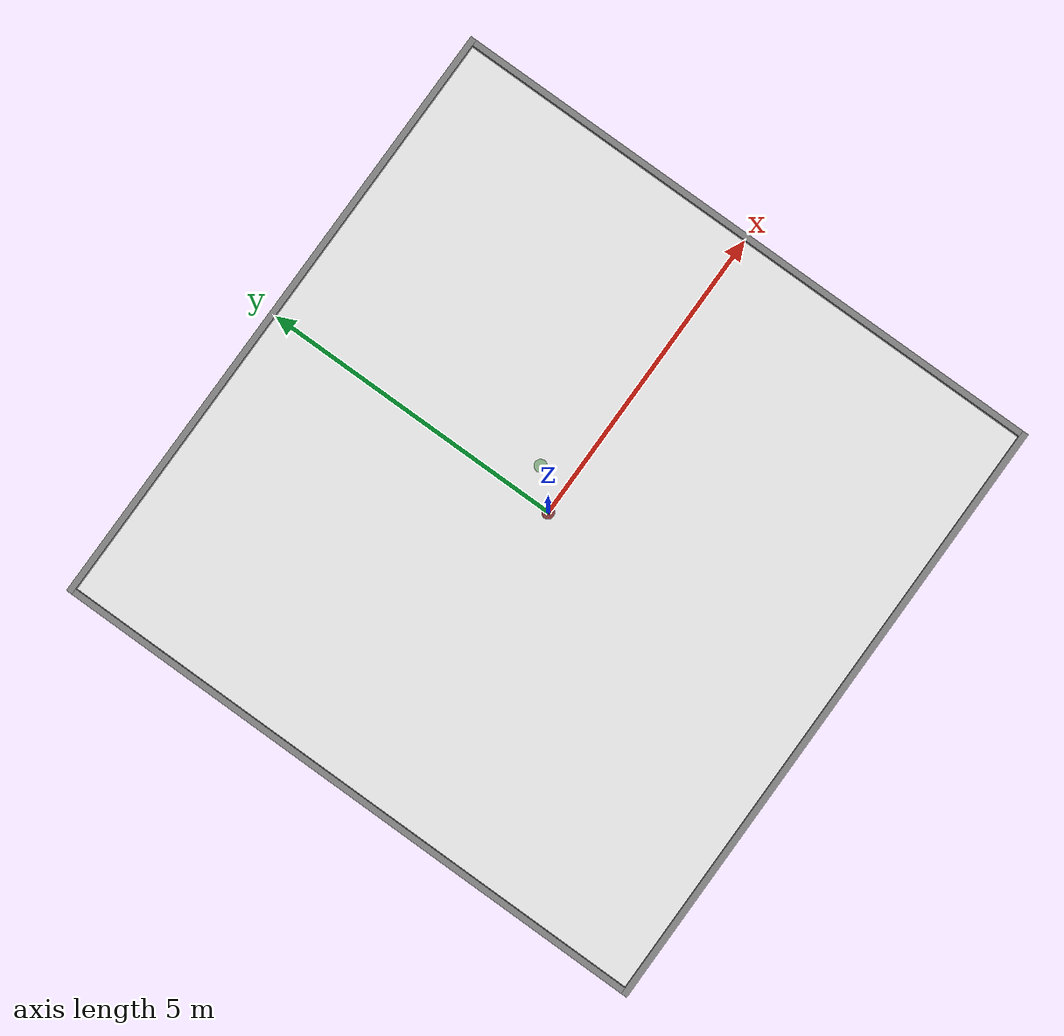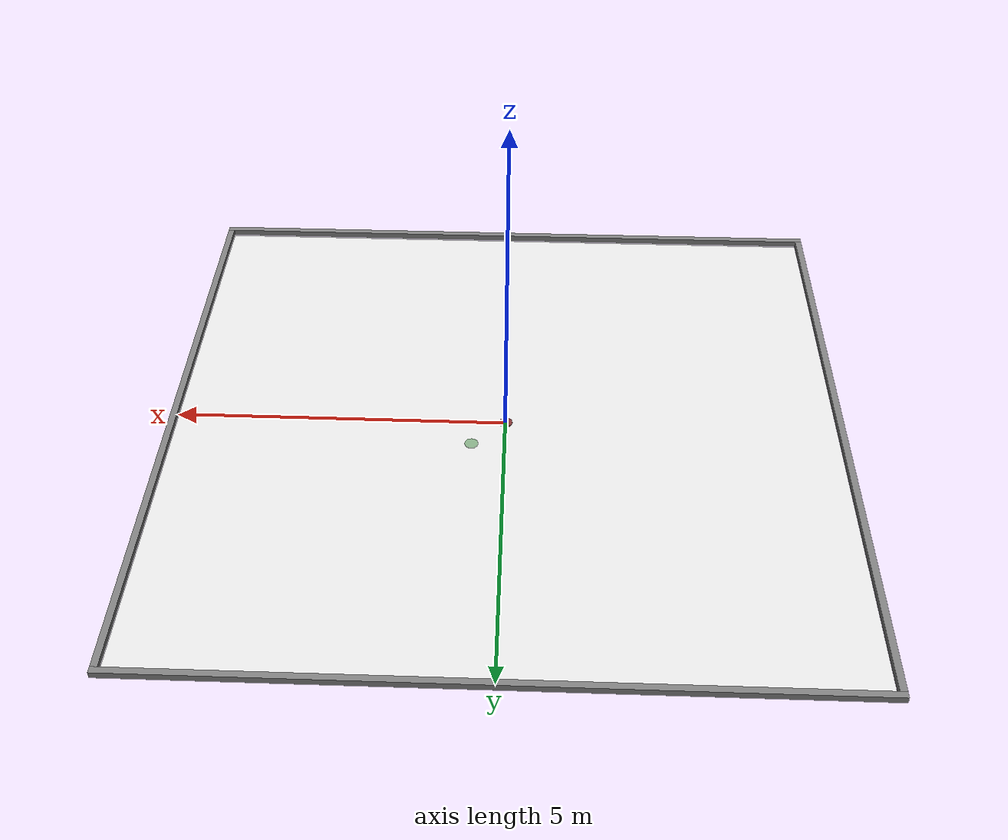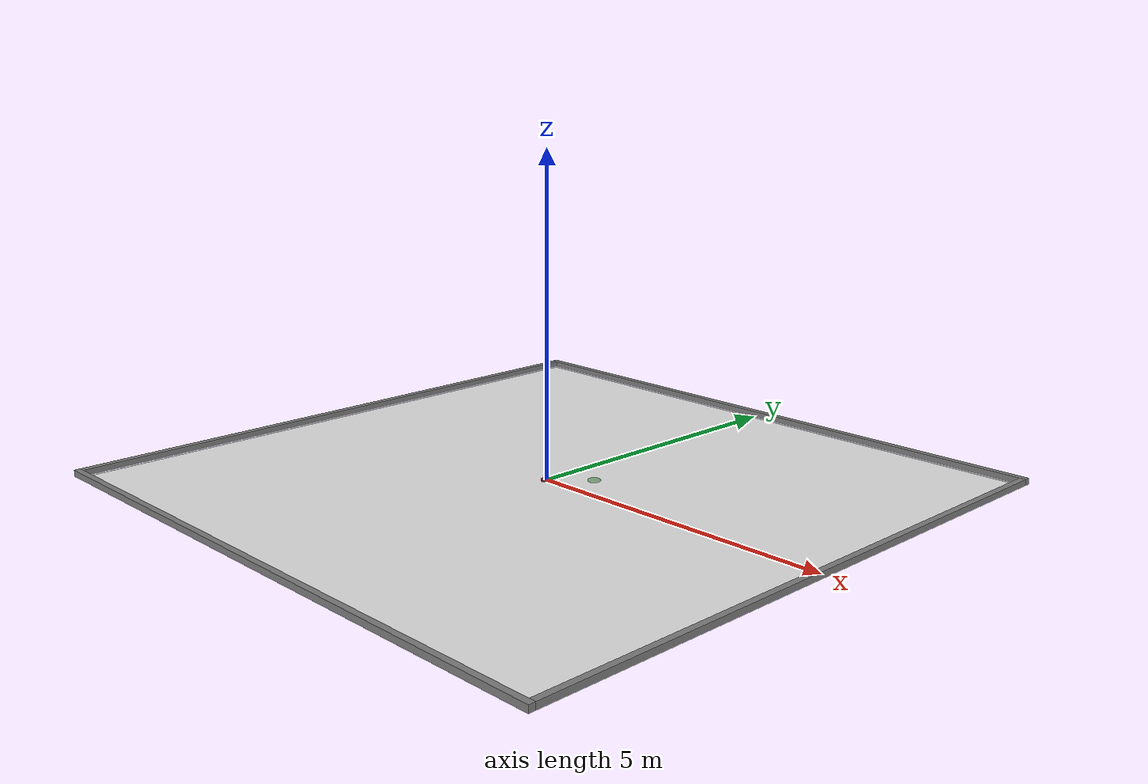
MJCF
<mujoco model="test_scene">
    <!-- Basic settings -->
    <compiler angle="degree" coordinate="local"/>
    <option timestep="0.001" integrator = "RK4" gravity="0 0 -9.81"/>

    <!-- Rendering options -->
    <visual>
        <map znear="0.01" zfar="50"/>
        <quality shadowsize="2048"/>
        <headlight ambient="0.3 0.3 0.3" diffuse="0.8 0.8 0.8"/>
        <scale
            framelength="0.1"
            framewidth="0.005"
            jointlength="0.1"
            jointwidth="0.005" />
    </visual>

    <!-- Define default colors -->
    <default>
        <default class="color_agent">
            <geom rgba="0.5 0.2 0.2 1"/>
        </default>
        <default class="color_transparent">
            <geom rgba="0 0 0 0"/>
        </default>
        <default class="color_goal">
            <geom rgba="0.2 0.5 0.2 0.5"/>
        </default>
        <default class="color_ground">
            <geom rgba="0.9 0.9 0.9 1"/>
        </default>
        <default class="color_wall">
            <geom rgba="0.5 0.5 0.5 1"/>
        </default>
    </default>

    <default>
        <joint damping="0"/>
    </default>

    <!-- World definition -->
    <worldbody>
        <!-- Ground plane -->
        <geom name="ground" type="plane" size="5 5 0.1" friction="0 0 0" class="color_ground"/>

        <!-- Light source -->
        <light name="light" pos="2 2 10" dir="-1 -1 -1" diffuse="1 1 1" specular="0.3 0.3 0.3" castshadow="true"/>

        <!-- Camera -->
        <camera name="camera" pos="0 0 10"/>

        <!-- Test object(s) -->

        <!-- 2nd revision -->

        <!-- 3rd revision -->
        <body name="agent" pos="0 0 0.01" euler="0 0 0">
            <joint name="agent_x_slide" type="slide" axis="1 0 0"/>
            <joint name="agent_y_slide" type="slide" axis="0 1 0"/>
            <joint name="agent_z_yaw" type="hinge" axis="0 0 1"/>
            <geom type="cylinder" size="0.1 0.01" contype="1" conaffinity="1" mass="0.5" class="color_agent"/>
            <geom type = "box" contype = "0" conaffinity = "0" pos = "0 0 0.015" size = "0.01 0.03 0.005" rgba = "0 0 1 1"/>

            <!-- add the site for the lidar -->
            <site name = "lidar_site" pos = "0 0 0.01" euler = "-90 0 0"/>
            <site name = "lidar_site_2" pos = "0 0 0.01" euler = "-90 180 0"/>
        </body>

        <body name="goal" pos="0.5 0.5 0.01">
            <geom type="cylinder" size="0.1 0.01" contype="0" conaffinity="0" class="color_goal"/>
        </body>

        <!-- Boundaries -->
        <body name="wall_1" pos="0 5.05 0.05">
            <geom type="box" size="5.1 0.05 0.05" class="color_wall"/>
        </body>

        <body name="wall_3" pos="0 -5.05 0.05">
            <geom type="box" size="5.1 0.05 0.05" class="color_wall"/>
        </body>

        <body name="wall_2" pos="5.05 0 0.05">
            <geom type="box" size="0.05 5 0.05" class="color_wall"/>
        </body>

        <body name="wall_4" pos="-5.05 0 0.05">
            <geom type="box" size="0.05 5 0.05" class="color_wall"/>
        </body>

    </worldbody>

    <sensor>
        <rangefinder name = "lidar" site = "lidar_site"/>
        <rangefinder name = "lidar_2" site = "lidar_site_2"/>
    </sensor>
    <!-- Actuators to drive the agent -->
</mujoco>
